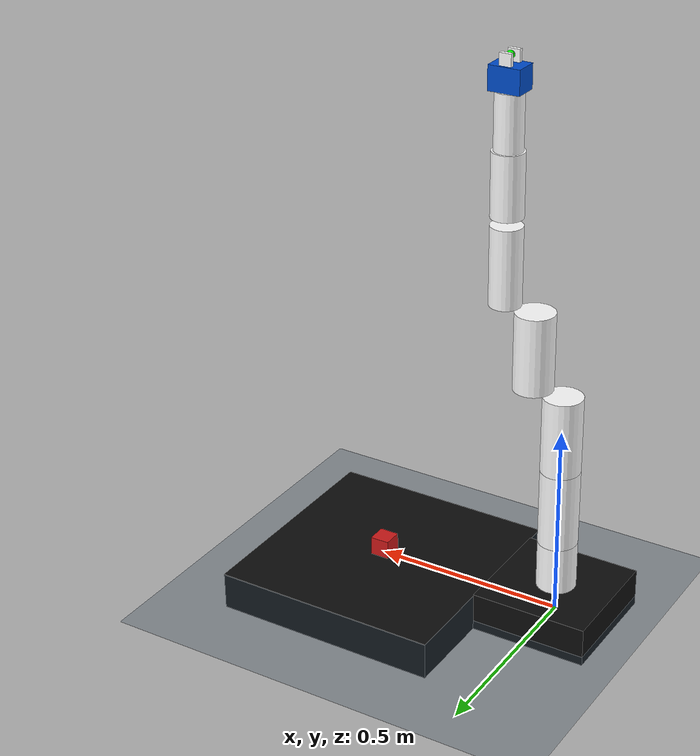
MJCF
<?xml version="1.0" encoding="UTF-8"?>
<mujoco model="franka_panda">
    <compiler angle="radian" meshdir="../assets/meshes" texturedir="../assets/textures" />

    <option timestep="0.002" iterations="50" solver="Newton" integrator="Euler" />

    <size njmax="500" nconmax="100" />

    <visual>
        <global azimuth="120" elevation="-20"/>
        <quality shadowsize="4096" offsamples="8"/>
        <map force="0.1" zfar="30"/>
        <scale forcewidth="0.01" contactheight="0.05" contactwidth="0.1"/>
    </visual>

    <asset>
        <!-- Textures -->
        <texture name="metal" type="cube" builtin="flat" rgb1="0.5 0.5 0.5" width="128" height="128" mark="cross" markrgb="1 1 1"/>
        <texture name="texplane" type="2d" builtin="checker" rgb1="0.2 0.3 0.4" rgb2="0.1 0.15 0.2" width="512" height="512"/>

        <!-- Materials -->
        <material name="metal" texture="metal" reflectance="0.7" specular="0.5"/>
        <material name="floor_mat" texture="texplane" texrepeat="4 4" specular="0.2"/>
        <material name="panda_white" rgba="1 1 1 1" specular="0.5" shininess="0.5"/>
        <material name="panda_blue" rgba="0 0.3 0.8 1" specular="0.5" shininess="0.8"/>
        <material name="panda_black" rgba="0.05 0.05 0.05 1" specular="0.5" shininess="0.3"/>
        <material name="panda_yellow" rgba="1 0.9 0 1" specular="0.5" shininess="0.3"/>
        <material name="panda_red" rgba="1 0 0 1" specular="0.5" shininess="0.3"/>
        <material name="cube_red" rgba="0.8 0.1 0.1 1" specular="0.8" shininess="0.9"/>
    </asset>

    <worldbody>
        <!-- Ground -->
        <geom name="floor" size="0 0 0.05" type="plane" material="floor_mat"/>

        <!-- Light -->
        <light name="light1" mode="targetbodycom" target="panda_link0" pos="0.5 0.5 1.5" dir="0 0 -1" diffuse="0.8 0.8 0.8"/>
        <light name="light2" pos="-0.5 -0.5 1.5" dir="0 0 -1" diffuse="0.5 0.5 0.5"/>

        <!-- Camera -->
        <camera name="top_camera" pos="0 0 1.5" quat="0.707 0.707 0 0" fovy="45"/>

        <!-- Robot base -->
        <body name="panda_link0" pos="0 0 0">
            <inertial pos="0 0 0" mass="4.0" diaginertia="0.4 0.4 0.4"/>
            <geom name="panda_base" type="box" size="0.15 0.15 0.05" material="panda_black" pos="0 0 0.025"/>

            <!-- Link 1 -->
            <body name="panda_link1" pos="0 0 0.1">
                <inertial pos="0 0 0.1" mass="3.0" diaginertia="0.3 0.3 0.3"/>
                <joint name="joint1" axis="0 0 1" type="hinge" range="-2.9 2.9"/>
                <geom name="panda_link1_geom" type="cylinder" size="0.05 0.1" material="panda_white" pos="0 0 0"/>

                <!-- Link 2 -->
                <body name="panda_link2" pos="0 0 0.2">
                    <inertial pos="0 0 0" mass="3.0" diaginertia="0.3 0.3 0.3"/>
                    <joint name="joint2" axis="0 1 0" type="hinge" range="-1.76 1.76"/>
                    <geom name="panda_link2_geom" type="cylinder" size="0.05 0.1" material="panda_white" pos="0 0 0"/>

                    <!-- Link 3 -->
                    <body name="panda_link3" pos="0 0 0.2">
                        <inertial pos="0 0 0" mass="2.5" diaginertia="0.2 0.2 0.2"/>
                        <joint name="joint3" axis="0 0 1" type="hinge" range="-2.9 2.9"/>
                        <geom name="panda_link3_geom" type="cylinder" size="0.05 0.1" material="panda_white" pos="0 0 0"/>

                        <!-- Link 4 -->
                        <body name="panda_link4" pos="0.08 0 0.2">
                            <inertial pos="0 0 0" mass="2.5" diaginertia="0.2 0.2 0.2"/>
                            <joint name="joint4" axis="0 1 0" type="hinge" range="-3.07 0"/>
                            <geom name="panda_link4_geom" type="cylinder" size="0.05 0.1" material="panda_white" pos="0 0 0"/>

                            <!-- Link 5 -->
                            <body name="panda_link5" pos="0.08 0 0.2">
                                <inertial pos="0 0 0" mass="2.0" diaginertia="0.1 0.1 0.1"/>
                                <joint name="joint5" axis="0 0 1" type="hinge" range="-2.9 2.9"/>
                                <geom name="panda_link5_geom" type="cylinder" size="0.04 0.1" material="panda_white" pos="0 0 0"/>

                                <!-- Link 6 -->
                                <body name="panda_link6" pos="0 0 0.2">
                                    <inertial pos="0 0 0" mass="1.5" diaginertia="0.1 0.1 0.1"/>
                                    <joint name="joint6" axis="0 1 0" type="hinge" range="-0.02 3.75"/>
                                    <geom name="panda_link6_geom" type="cylinder" size="0.04 0.08" material="panda_white" pos="0 0 0"/>

                                    <!-- Link 7 (Last arm joint) -->
                                    <body name="panda_link7" pos="0 0 0.15">
                                        <inertial pos="0 0 0" mass="0.5" diaginertia="0.05 0.05 0.05"/>
                                        <joint name="joint7" axis="0 0 1" type="hinge" range="-2.9 2.9"/>
                                        <geom name="panda_link7_geom" type="cylinder" size="0.035 0.07" material="panda_white" pos="0 0 0"/>

                                        <!-- Hand -->
                                        <body name="panda_hand" pos="0 0 0.1">
                                            <inertial pos="0 0 0" mass="0.7" diaginertia="0.01 0.01 0.01"/>
                                            <geom name="panda_hand_geom" type="box" size="0.04 0.03 0.03" material="panda_blue" pos="0 0 0"/>

                                            <!-- End effector site for tracking -->
                                            <site name="ee_site" pos="0 0 0.05" size="0.01" rgba="0 1 0 1" type="sphere"/>

                                            <!-- Left finger -->
                                            <body name="panda_leftfinger" pos="0 0.02 0.035">
                                                <inertial pos="0 0 0" mass="0.1" diaginertia="0.001 0.001 0.001"/>
                                                <joint name="finger_joint1" axis="0 1 0" type="slide" range="0 0.04"/>
                                                <geom name="panda_leftfinger_geom" type="box" size="0.015 0.005 0.025" material="panda_white"/>
                                            </body>

                                            <!-- Right finger -->
                                            <body name="panda_rightfinger" pos="0 -0.02 0.035">
                                                <inertial pos="0 0 0" mass="0.1" diaginertia="0.001 0.001 0.001"/>
                                                <joint name="finger_joint2" axis="0 1 0" type="slide" range="0 0.04"/>
                                                <geom name="panda_rightfinger_geom" type="box" size="0.015 0.005 0.025" material="panda_white"/>
                                            </body>
                                        </body>
                                    </body>
                                </body>
                            </body>
                        </body>
                    </body>
                </body>
            </body>
        </body>

        <!-- Table -->
        <body name="table" pos="0.5 0 0">
            <geom name="table_geom" type="box" size="0.3 0.3 0.05" pos="0 0 -0.05" material="panda_black"/>

            <!-- Red cube object on table -->
            <body name="red_cube" pos="0 0 0.025">
                <joint name="cube_joint" type="free"/>
                <geom name="red_cube_geom" type="box" size="0.025 0.025 0.025" material="cube_red"/>
            </body>
        </body>

        <!-- Mocap body for IK target -->
        <body name="mocap" pos="0 0 0" mocap="true">
            <geom type="sphere" size="0.02" rgba="1 1 0 0.5" contype="0" conaffinity="0"/>
        </body>
    </worldbody>

    <!-- Actuators -->
    <actuator>
        <!-- Position actuators for arm joints -->
        <position name="joint1_pos" joint="joint1" kp="150" ctrlrange="-2.9 2.9"/>
        <position name="joint2_pos" joint="joint2" kp="150" ctrlrange="-1.76 1.76"/>
        <position name="joint3_pos" joint="joint3" kp="150" ctrlrange="-2.9 2.9"/>
        <position name="joint4_pos" joint="joint4" kp="150" ctrlrange="-3.07 0"/>
        <position name="joint5_pos" joint="joint5" kp="150" ctrlrange="-2.9 2.9"/>
        <position name="joint6_pos" joint="joint6" kp="150" ctrlrange="-0.02 3.75"/>
        <position name="joint7_pos" joint="joint7" kp="150" ctrlrange="-2.9 2.9"/>

        <!-- Position actuators for gripper -->
        <position name="finger_joint1_pos" joint="finger_joint1" kp="100" ctrlrange="0 0.04"/>
        <position name="finger_joint2_pos" joint="finger_joint2" kp="100" ctrlrange="0 0.04"/>
    </actuator>

    <!-- Equality for gripper mirroring -->
    <equality>
        <joint joint1="finger_joint1" joint2="finger_joint2" solimp="0.95 0.99 0.001" solref="0.005 1"/>
    </equality>

    <!-- Simulation parameters -->
    <contact>
        <exclude body1="panda_leftfinger" body2="panda_link7"/>
        <exclude body1="panda_rightfinger" body2="panda_link7"/>
    </contact>
</mujoco>
